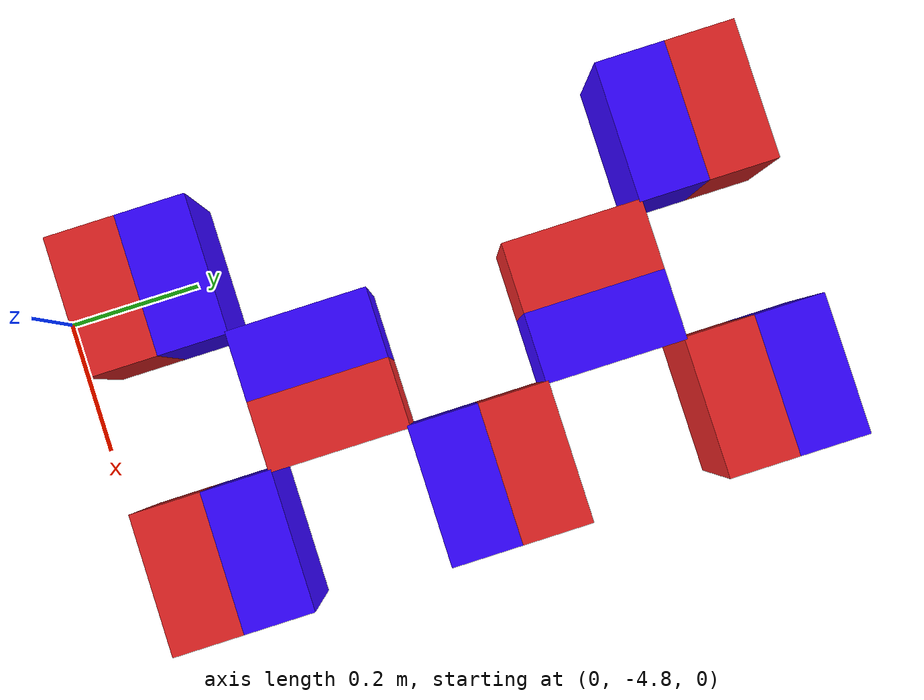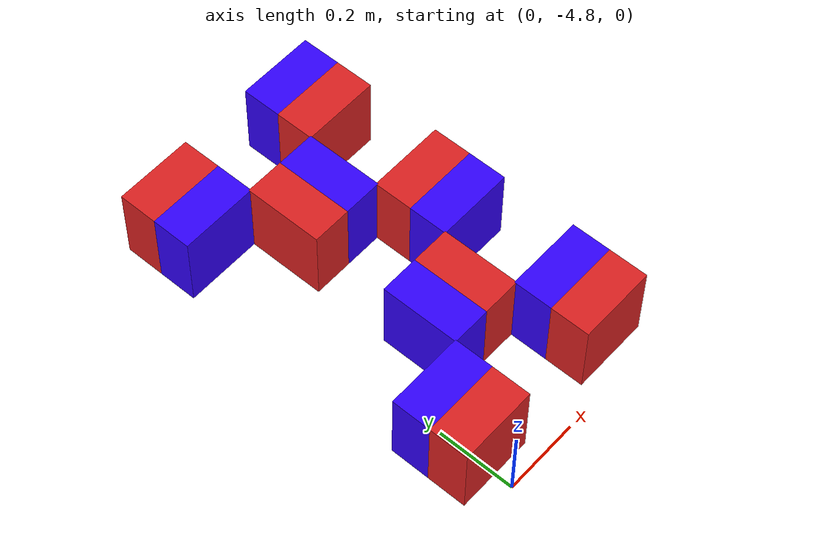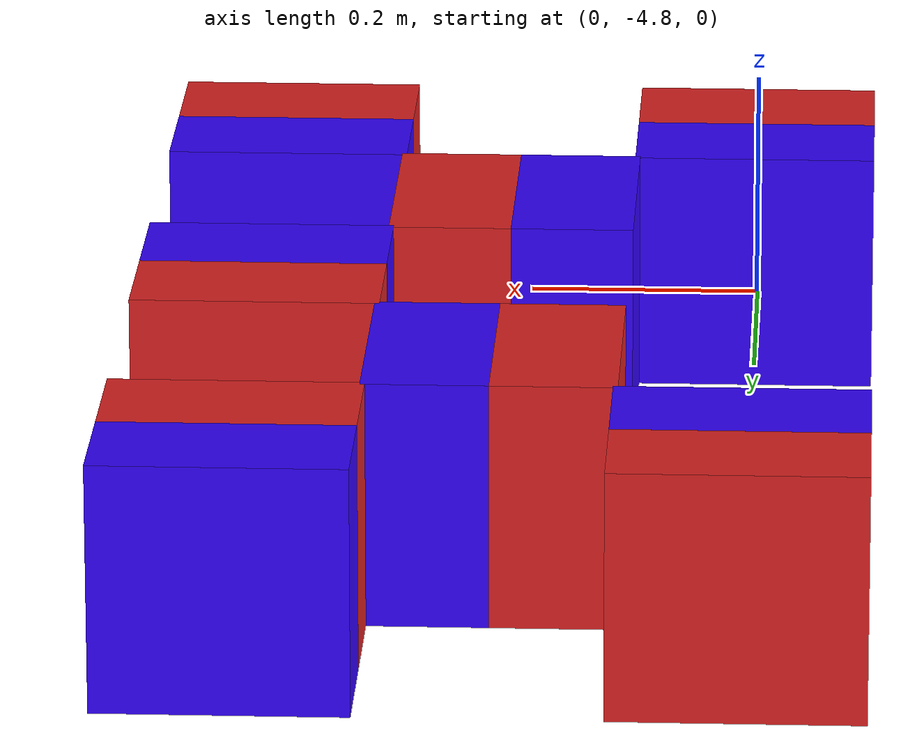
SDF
<sdf version="1.9">
 <world name="robocon2027">
  <model name="sky_13">
   <pose>0.0000 -3.8500 0.1020 0 0 0</pose>
   <link name="link">
    <inertial>
     <mass>0.22</mass>
     <inertia><ixx>0.001467</ixx><iyy>0.001467</iyy><izz>0.001467</izz></inertia>
    </inertial>
    <collision name="c">
     <geometry><box><size>0.2 0.2 0.2</size></box></geometry>
     <surface><friction><ode><mu>0.7</mu><mu2>0.7</mu2></ode></friction></surface>
    </collision>
    <visual name="v">
     <geometry><box><size>0.2 0.2 0.2</size></box></geometry>
     <material><ambient>0.902 0.871 0.745 1</ambient><diffuse>0.902 0.871 0.745 1</diffuse></material>
    </visual>
    <visual name="red_half">
     <pose>0 0.051000000000000004 0 0 0 0</pose>
     <geometry><box><size>0.20400000000000001 0.10200000000000001 0.20400000000000001</size></box></geometry>
     <material><ambient>0.875 0.133 0.133 1</ambient><diffuse>0.875 0.133 0.133 1</diffuse></material>
    </visual>
    <visual name="blue_half">
     <pose>0 -0.051000000000000004 0 0 0 0</pose>
     <geometry><box><size>0.20400000000000001 0.10200000000000001 0.20400000000000001</size></box></geometry>
     <material><ambient>0.196 0.0 1.0 1</ambient><diffuse>0.196 0.0 1.0 1</diffuse></material>
    </visual>
   </link>
  </model>
  <model name="sky_15">
   <pose>0.4000 -3.8500 0.1020 0 0 0</pose>
   <link name="link">
    <inertial>
     <mass>0.22</mass>
     <inertia><ixx>0.001467</ixx><iyy>0.001467</iyy><izz>0.001467</izz></inertia>
    </inertial>
    <collision name="c">
     <geometry><box><size>0.2 0.2 0.2</size></box></geometry>
     <surface><friction><ode><mu>0.7</mu><mu2>0.7</mu2></ode></friction></surface>
    </collision>
    <visual name="v">
     <geometry><box><size>0.2 0.2 0.2</size></box></geometry>
     <material><ambient>0.902 0.871 0.745 1</ambient><diffuse>0.902 0.871 0.745 1</diffuse></material>
    </visual>
    <visual name="red_half">
     <pose>0 -0.051000000000000004 0 0 0 0</pose>
     <geometry><box><size>0.20400000000000001 0.10200000000000001 0.20400000000000001</size></box></geometry>
     <material><ambient>0.875 0.133 0.133 1</ambient><diffuse>0.875 0.133 0.133 1</diffuse></material>
    </visual>
    <visual name="blue_half">
     <pose>0 0.051000000000000004 0 0 0 0</pose>
     <geometry><box><size>0.20400000000000001 0.10200000000000001 0.20400000000000001</size></box></geometry>
     <material><ambient>0.196 0.0 1.0 1</ambient><diffuse>0.196 0.0 1.0 1</diffuse></material>
    </visual>
   </link>
  </model>
  <model name="sky_24">
   <pose>0.2000 -4.0500 0.1020 0 0 0</pose>
   <link name="link">
    <inertial>
     <mass>0.22</mass>
     <inertia><ixx>0.001467</ixx><iyy>0.001467</iyy><izz>0.001467</izz></inertia>
    </inertial>
    <collision name="c">
     <geometry><box><size>0.2 0.2 0.2</size></box></geometry>
     <surface><friction><ode><mu>0.7</mu><mu2>0.7</mu2></ode></friction></surface>
    </collision>
    <visual name="v">
     <geometry><box><size>0.2 0.2 0.2</size></box></geometry>
     <material><ambient>0.902 0.871 0.745 1</ambient><diffuse>0.902 0.871 0.745 1</diffuse></material>
    </visual>
    <visual name="red_half">
     <pose>-0.051000000000000004 0 0 0 0 0</pose>
     <geometry><box><size>0.10200000000000001 0.20400000000000001 0.20400000000000001</size></box></geometry>
     <material><ambient>0.875 0.133 0.133 1</ambient><diffuse>0.875 0.133 0.133 1</diffuse></material>
    </visual>
    <visual name="blue_half">
     <pose>0.051000000000000004 0 0 0 0 0</pose>
     <geometry><box><size>0.10200000000000001 0.20400000000000001 0.20400000000000001</size></box></geometry>
     <material><ambient>0.196 0.0 1.0 1</ambient><diffuse>0.196 0.0 1.0 1</diffuse></material>
    </visual>
   </link>
  </model>
  <model name="sky_35">
   <pose>0.4000 -4.2500 0.1020 0 0 0</pose>
   <link name="link">
    <inertial>
     <mass>0.22</mass>
     <inertia><ixx>0.001467</ixx><iyy>0.001467</iyy><izz>0.001467</izz></inertia>
    </inertial>
    <collision name="c">
     <geometry><box><size>0.2 0.2 0.2</size></box></geometry>
     <surface><friction><ode><mu>0.7</mu><mu2>0.7</mu2></ode></friction></surface>
    </collision>
    <visual name="v">
     <geometry><box><size>0.2 0.2 0.2</size></box></geometry>
     <material><ambient>0.902 0.871 0.745 1</ambient><diffuse>0.902 0.871 0.745 1</diffuse></material>
    </visual>
    <visual name="red_half">
     <pose>0 0.051000000000000004 0 0 0 0</pose>
     <geometry><box><size>0.20400000000000001 0.10200000000000001 0.20400000000000001</size></box></geometry>
     <material><ambient>0.875 0.133 0.133 1</ambient><diffuse>0.875 0.133 0.133 1</diffuse></material>
    </visual>
    <visual name="blue_half">
     <pose>0 -0.051000000000000004 0 0 0 0</pose>
     <geometry><box><size>0.20400000000000001 0.10200000000000001 0.20400000000000001</size></box></geometry>
     <material><ambient>0.196 0.0 1.0 1</ambient><diffuse>0.196 0.0 1.0 1</diffuse></material>
    </visual>
   </link>
  </model>
  <model name="sky_44">
   <pose>0.2000 -4.4500 0.1020 0 0 0</pose>
   <link name="link">
    <inertial>
     <mass>0.22</mass>
     <inertia><ixx>0.001467</ixx><iyy>0.001467</iyy><izz>0.001467</izz></inertia>
    </inertial>
    <collision name="c">
     <geometry><box><size>0.2 0.2 0.2</size></box></geometry>
     <surface><friction><ode><mu>0.7</mu><mu2>0.7</mu2></ode></friction></surface>
    </collision>
    <visual name="v">
     <geometry><box><size>0.2 0.2 0.2</size></box></geometry>
     <material><ambient>0.902 0.871 0.745 1</ambient><diffuse>0.902 0.871 0.745 1</diffuse></material>
    </visual>
    <visual name="red_half">
     <pose>0.051000000000000004 0 0 0 0 0</pose>
     <geometry><box><size>0.10200000000000001 0.20400000000000001 0.20400000000000001</size></box></geometry>
     <material><ambient>0.875 0.133 0.133 1</ambient><diffuse>0.875 0.133 0.133 1</diffuse></material>
    </visual>
    <visual name="blue_half">
     <pose>-0.051000000000000004 0 0 0 0 0</pose>
     <geometry><box><size>0.10200000000000001 0.20400000000000001 0.20400000000000001</size></box></geometry>
     <material><ambient>0.196 0.0 1.0 1</ambient><diffuse>0.196 0.0 1.0 1</diffuse></material>
    </visual>
   </link>
  </model>
  <model name="sky_53">
   <pose>0.0000 -4.6500 0.1020 0 0 0</pose>
   <link name="link">
    <inertial>
     <mass>0.22</mass>
     <inertia><ixx>0.001467</ixx><iyy>0.001467</iyy><izz>0.001467</izz></inertia>
    </inertial>
    <collision name="c">
     <geometry><box><size>0.2 0.2 0.2</size></box></geometry>
     <surface><friction><ode><mu>0.7</mu><mu2>0.7</mu2></ode></friction></surface>
    </collision>
    <visual name="v">
     <geometry><box><size>0.2 0.2 0.2</size></box></geometry>
     <material><ambient>0.902 0.871 0.745 1</ambient><diffuse>0.902 0.871 0.745 1</diffuse></material>
    </visual>
    <visual name="red_half">
     <pose>0 -0.051000000000000004 0 0 0 0</pose>
     <geometry><box><size>0.20400000000000001 0.10200000000000001 0.20400000000000001</size></box></geometry>
     <material><ambient>0.875 0.133 0.133 1</ambient><diffuse>0.875 0.133 0.133 1</diffuse></material>
    </visual>
    <visual name="blue_half">
     <pose>0 0.051000000000000004 0 0 0 0</pose>
     <geometry><box><size>0.20400000000000001 0.10200000000000001 0.20400000000000001</size></box></geometry>
     <material><ambient>0.196 0.0 1.0 1</ambient><diffuse>0.196 0.0 1.0 1</diffuse></material>
    </visual>
   </link>
  </model>
  <model name="sky_55">
   <pose>0.4000 -4.6500 0.1020 0 0 0</pose>
   <link name="link">
    <inertial>
     <mass>0.22</mass>
     <inertia><ixx>0.001467</ixx><iyy>0.001467</iyy><izz>0.001467</izz></inertia>
    </inertial>
    <collision name="c">
     <geometry><box><size>0.2 0.2 0.2</size></box></geometry>
     <surface><friction><ode><mu>0.7</mu><mu2>0.7</mu2></ode></friction></surface>
    </collision>
    <visual name="v">
     <geometry><box><size>0.2 0.2 0.2</size></box></geometry>
     <material><ambient>0.902 0.871 0.745 1</ambient><diffuse>0.902 0.871 0.745 1</diffuse></material>
    </visual>
    <visual name="red_half">
     <pose>0 -0.051000000000000004 0 0 0 0</pose>
     <geometry><box><size>0.20400000000000001 0.10200000000000001 0.20400000000000001</size></box></geometry>
     <material><ambient>0.875 0.133 0.133 1</ambient><diffuse>0.875 0.133 0.133 1</diffuse></material>
    </visual>
    <visual name="blue_half">
     <pose>0 0.051000000000000004 0 0 0 0</pose>
     <geometry><box><size>0.20400000000000001 0.10200000000000001 0.20400000000000001</size></box></geometry>
     <material><ambient>0.196 0.0 1.0 1</ambient><diffuse>0.196 0.0 1.0 1</diffuse></material>
    </visual>
   </link>
  </model>
 </world>
</sdf>
